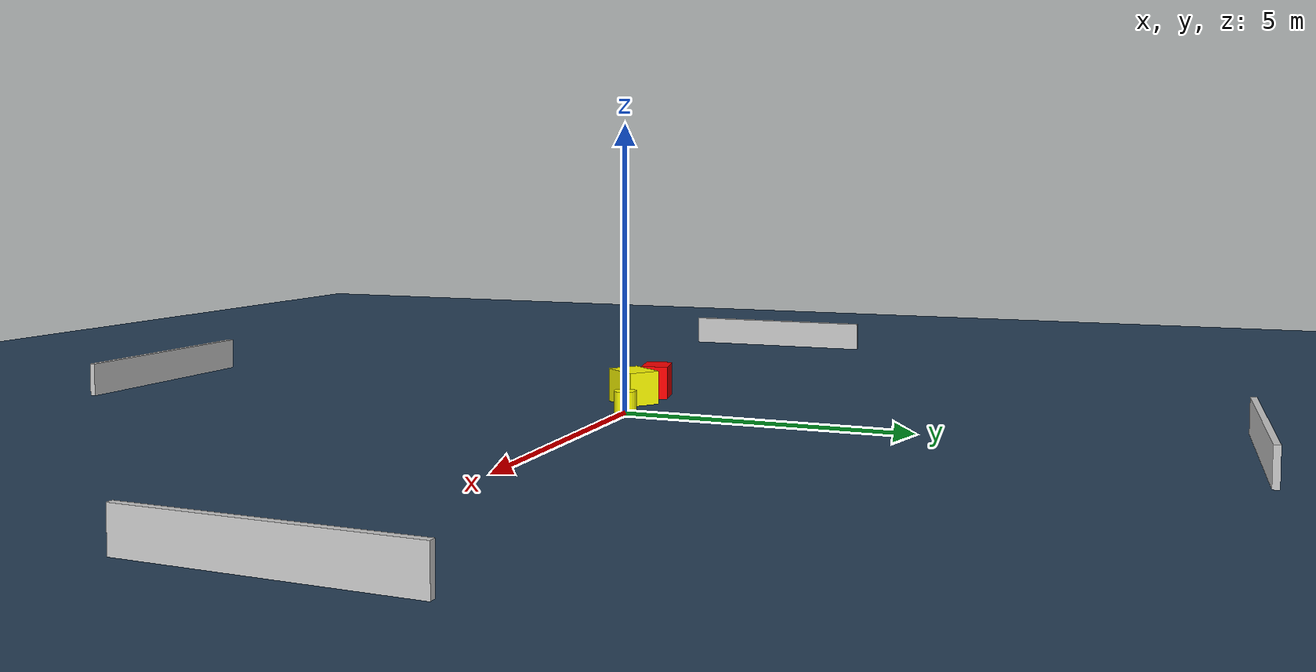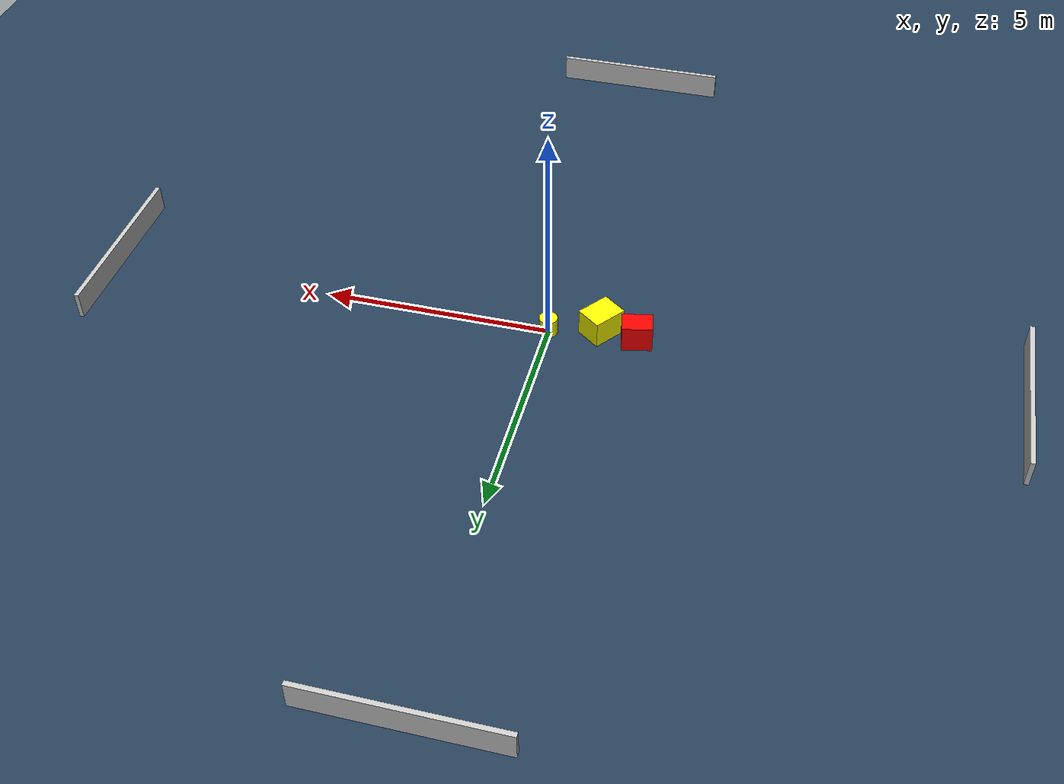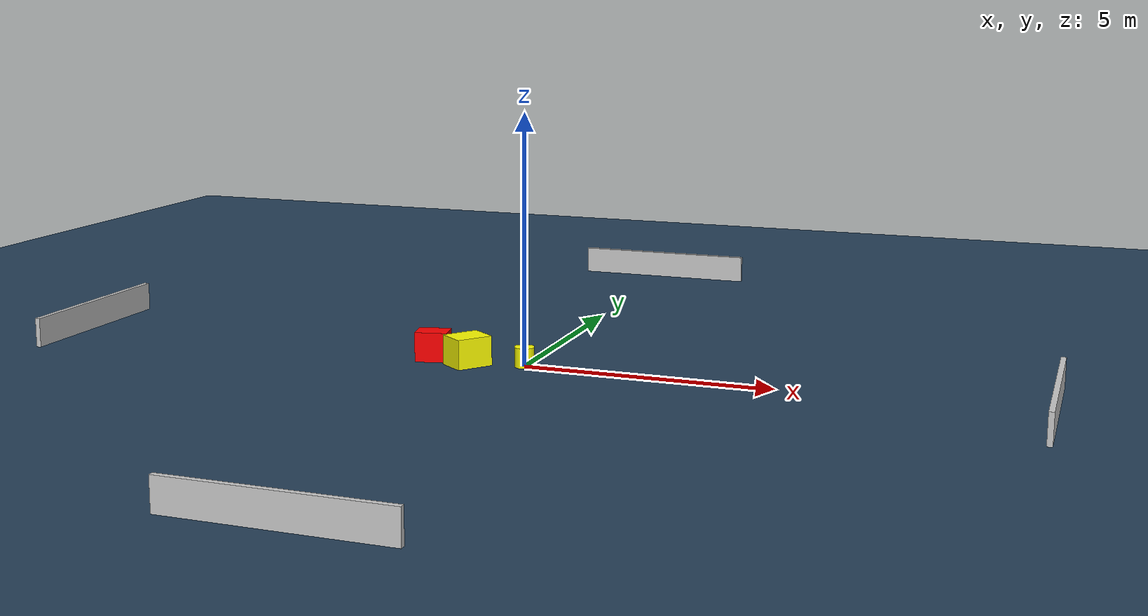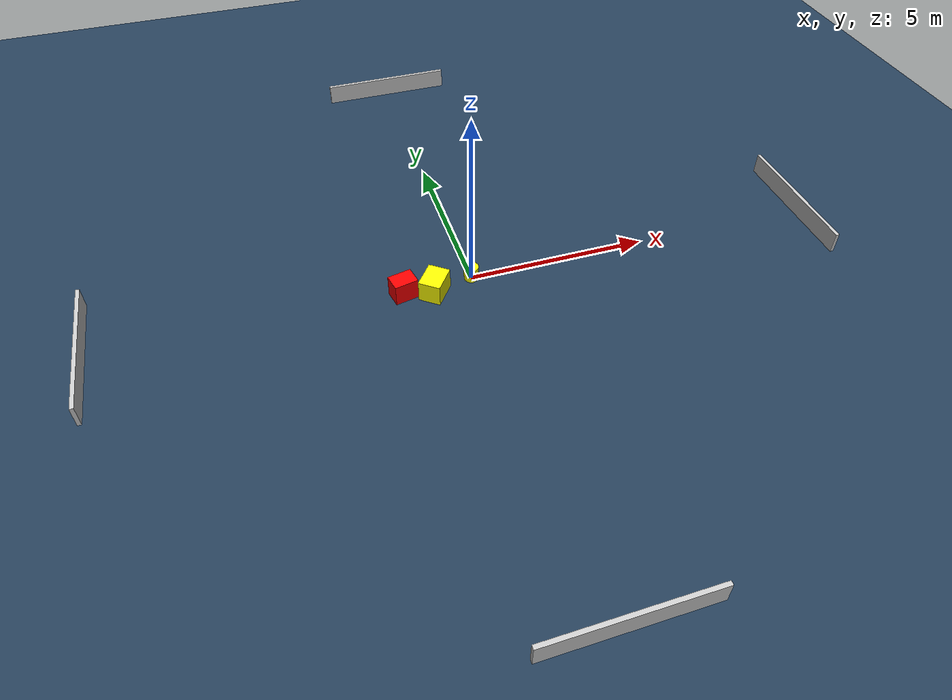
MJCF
<?xml version="1.0" ?>
<mujoco model="generated_environment">
  <option timestep="0.01" integrator="RK4" cone="elliptic"/>
  <default>
    <geom density="1"/>
  </default>
  <asset>
    <texture builtin="gradient" height="3072" name="skybox" rgb1="0.3 0.5 0.7" rgb2="0 0 0" type="skybox" width="512"/>
    <texture builtin="checker" height="300" name="groundplane" rgb1="0.2 0.3 0.4" rgb2="0.1 0.2 0.3" type="2d" width="300"/>
    <material name="groundplane" reflectance="0.2" texrepeat="5 5" texture="groundplane"/>
  </asset>
  <worldbody>
    <light dir="0 0 -1" directional="true" pos="0 0 1.5"/>
    <geom condim="3" friction="0.5 0.005 0.001" material="groundplane" name="floor" pos="0 0 0" size="0 0 0.05" type="plane"/>
    <body name="walls">
      <geom name="wall_1" condim="4" pos="-10.0 0.0 0.3" rgba="0.800000011920929 0.800000011920929 0.800000011920929 1.0" size="0.05 2.0 0.3" type="box"/>
      <geom name="wall_2" condim="4" pos="10.0 0.0 0.3" rgba="0.800000011920929 0.800000011920929 0.800000011920929 1.0" size="0.05 2.0 0.3" type="box"/>
      <geom name="wall_3" condim="4" pos="0.0 -10.0 0.3" rgba="0.800000011920929 0.800000011920929 0.800000011920929 1.0" size="2.0 0.05 0.3" type="box"/>
      <geom name="wall_4" condim="4" pos="0.0 10.0 0.3" rgba="0.800000011920929 0.800000011920929 0.800000011920929 1.0" size="2.0 0.05 0.3" type="box"/>
    </body>
    <body name="robot">
      <joint name="joint_x" type="slide" pos="0 0 0" axis="1 0 0"/>
      <joint name="joint_y" type="slide" pos="0 0 0" axis="0 1 0"/>
      <geom name="robot" type="cylinder" pos="0.0 0.0 0.2" size="0.2 0.2 0.0" mass="5.0" friction="1.0 0.005 0.0001" condim="4" rgba="1.0 1.0 0.0 1.0"/>
    </body>
    <body name="obstacle_1_movable">
      <geom name="obstacle_1_movable" condim="4" pos="-1.1018310216821134 -0.2707642616248335 0.3" euler="0 0 322.92222983358477" friction="0.0 0.005 0.001" rgba="1.0 1.0 0.0 1.0" size="0.30050137530405746 0.38077835537860305 0.3" type="box" mass="0.1"/>
      <joint type="free"/>
    </body>
    <body name="obstacle_2_static">
      <geom name="obstacle_2_static" condim="4" pos="-1.908218368128327 -0.11338951360138308 0.3" euler="0 0 101.748956712163" friction="0.0 0.005 0.001" rgba="1.0 0.0 0.0 1.0" size="0.24135668823677486 0.3272649328407582 0.3" type="box"/>
    </body>
  </worldbody>
  <actuator>
    <motor name="actuator_x" joint="joint_x" gear="1" ctrlrange="-1 1"/>
    <motor name="actuator_y" joint="joint_y" gear="1" ctrlrange="-1 1"/>
  </actuator>
</mujoco>
